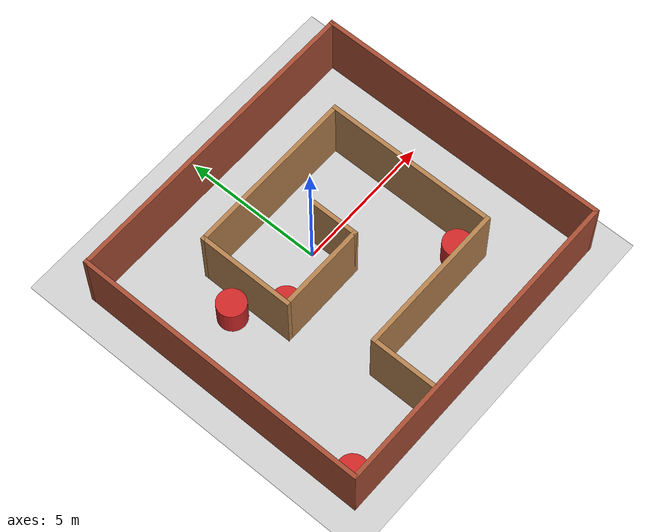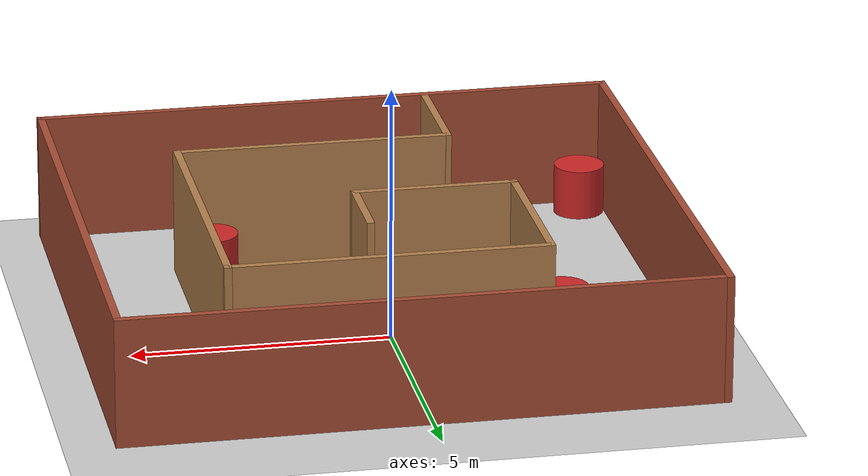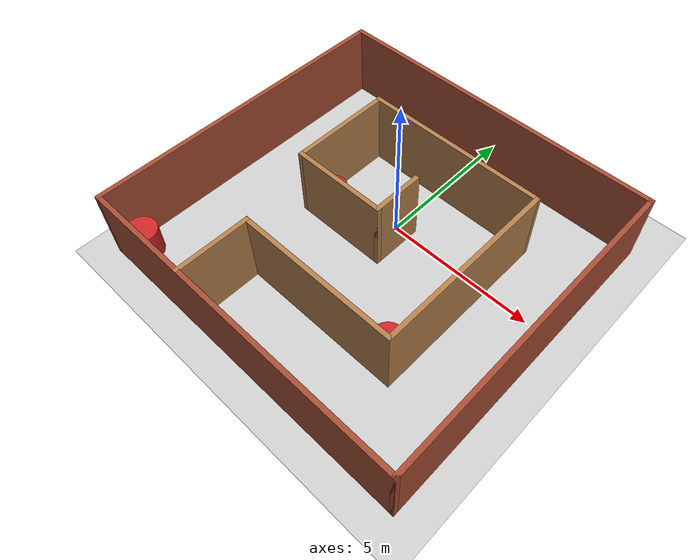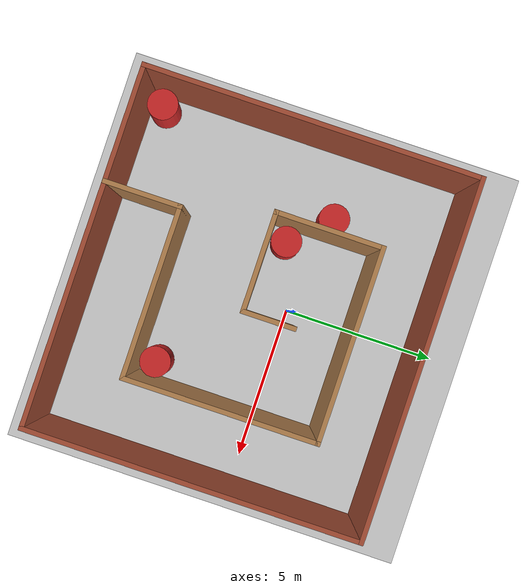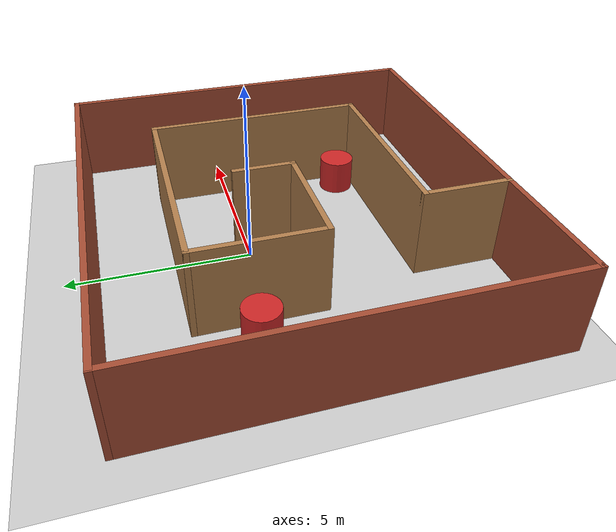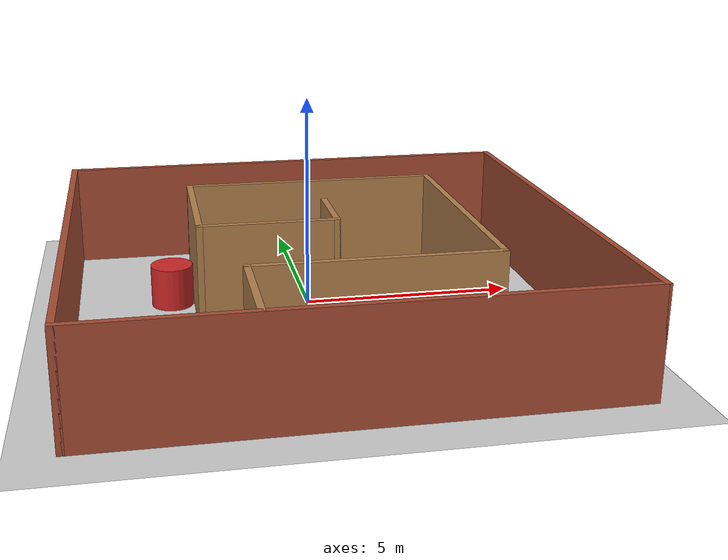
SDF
<sdf version="1.6">
 <world name="default">
  <light name="sun" type="directional">
   <pose>0 0 10 0 -0 0</pose>
   <diffuse>0.8 0.8 0.8 1</diffuse>
   <specular>0.1 0.1 0.1 1</specular>
   <attenuation>
    <range>1000</range>
    <constant>0.9</constant>
    <linear>0.01</linear>
    <quadratic>0.001</quadratic>
   </attenuation>
   <direction>-0.5 0.5 -1</direction>
  </light>
  <model name="ground_plane">
   <static>1</static>
   <link name="link">
    <collision name="collision">
     <geometry><plane><normal>0 0 1</normal><size>100 100</size></plane></geometry>
     <surface><friction><ode><mu>100</mu><mu2>50</mu2></ode></friction></surface>
    </collision>
    <visual name="visual">
     <cast_shadows>0</cast_shadows>
     <geometry><plane><normal>0 0 1</normal><size>100 100</size></plane></geometry>
     <material>
      <script><uri>file://media/materials/scripts/gazebo.material</uri><name>Gazebo/Grey</name></script>
     </material>
    </visual>
   </link>
  </model>
  <physics name="default_physics" default="0" type="ode">
   <real_time_update_rate>1000</real_time_update_rate>
   <max_step_size>0.001</max_step_size>
   <real_time_factor>1</real_time_factor>
   <ode>
    <solver>
     <type>quick</type>
     <iters>150</iters>
     <precon_iters>0</precon_iters>
     <sor>1.4</sor>
     <use_dynamic_moi_rescaling>1</use_dynamic_moi_rescaling>
    </solver>
    <constraints>
     <cfm>1e-05</cfm>
     <erp>0.2</erp>
     <contact_max_correcting_vel>2000</contact_max_correcting_vel>
     <contact_surface_layer>0.01</contact_surface_layer>
    </constraints>
   </ode>
  </physics>
  <gravity>0 0 -9.8</gravity>
  <magnetic_field>6e-06 2.3e-05 -4.2e-05</magnetic_field>
  <atmosphere type="adiabatic"/>
  <scene><ambient>0.4 0.4 0.4 1</ambient><background>0.7 0.7 0.7 1</background><shadows>1</shadows></scene>
  <spherical_coordinates>
   <surface_model>EARTH_WGS84</surface_model>
   <latitude_deg>0</latitude_deg>
   <longitude_deg>0</longitude_deg>
   <elevation>0</elevation>
   <heading_deg>0</heading_deg>
  </spherical_coordinates>
  <model name="Model4">
   <pose>0.134244 -1.1514 0 0 -0 0</pose>
   <link name="Wall_17">
    <collision name="Wall_17_Collision">
     <geometry><box><size>11.5 0.15 2.5</size></box></geometry>
     <pose>0 0 1.25 0 -0 0</pose>
    </collision>
    <visual name="Wall_17_Visual">
     <pose>0 0 1.25 0 -0 0</pose>
     <geometry><box><size>11.5 0.15 2.5</size></box></geometry>
     <material>
      <script><uri>file://media/materials/scripts/gazebo.material</uri><name>Gazebo/Bricks</name></script>
      <ambient>1 1 1 1</ambient>
     </material>
    </visual>
    <pose>0 5.3 0 0 -0 0</pose>
   </link>
   <link name="Wall_18">
    <collision name="Wall_18_Collision">
     <geometry><box><size>10.75 0.15 2.5</size></box></geometry>
     <pose>0 0 1.25 0 -0 0</pose>
    </collision>
    <visual name="Wall_18_Visual">
     <pose>0 0 1.25 0 -0 0</pose>
     <geometry><box><size>10.75 0.15 2.5</size></box></geometry>
     <material>
      <script><uri>file://media/materials/scripts/gazebo.material</uri><name>Gazebo/Bricks</name></script>
      <ambient>1 1 1 1</ambient>
     </material>
    </visual>
    <pose>5.675 0 0 0 0 -1.5708</pose>
   </link>
   <link name="Wall_21">
    <collision name="Wall_21_Collision">
     <geometry><box><size>10.75 0.15 2.5</size></box></geometry>
     <pose>0 0 1.25 0 -0 0</pose>
    </collision>
    <visual name="Wall_21_Visual">
     <pose>0 0 1.25 0 -0 0</pose>
     <geometry><box><size>10.75 0.15 2.5</size></box></geometry>
     <material>
      <script><uri>file://media/materials/scripts/gazebo.material</uri><name>Gazebo/Bricks</name></script>
      <ambient>1 1 1 1</ambient>
     </material>
    </visual>
    <pose>-5.675 0 0 0 0 -1.5708</pose>
   </link>
   <link name="Wall_22">
    <collision name="Wall_22_Collision">
     <geometry><box><size>11.5 0.15 2.5</size></box></geometry>
     <pose>0 0 1.25 0 -0 0</pose>
    </collision>
    <visual name="Wall_22_Visual">
     <pose>0 0 1.25 0 -0 0</pose>
     <geometry><box><size>11.5 0.15 2.5</size></box></geometry>
     <material>
      <script><uri>file://media/materials/scripts/gazebo.material</uri><name>Gazebo/Bricks</name></script>
      <ambient>1 1 1 1</ambient>
     </material>
    </visual>
    <pose>0 -5.3 0 0 -0 0</pose>
   </link>
   <link name="Wall_23">
    <collision name="Wall_23_Collision">
     <geometry><box><size>0.15 0.15 2.5</size></box></geometry>
     <pose>0 0 1.25 0 -0 0</pose>
    </collision>
    <visual name="Wall_23_Visual">
     <pose>0 0 1.25 0 -0 0</pose>
     <geometry><box><size>0.15 0.15 2.5</size></box></geometry>
     <material>
      <script><uri>file://media/materials/scripts/gazebo.material</uri><name>Gazebo/Bricks</name></script>
      <ambient>1 1 1 1</ambient>
     </material>
    </visual>
    <pose>5.675 -5.3 0 0 -0 0</pose>
   </link>
   <link name="Wall_28">
    <collision name="Wall_28_Collision">
     <geometry><box><size>2.5 0.15 2.5</size></box></geometry>
     <pose>0 0 1.25 0 -0 0</pose>
    </collision>
    <visual name="Wall_28_Visual">
     <pose>0 0 1.25 0 -0 0</pose>
     <geometry><box><size>2.5 0.15 2.5</size></box></geometry>
     <material>
      <script><uri>file://media/materials/scripts/gazebo.material</uri><name>Gazebo/Wood</name></script>
      <ambient>1 1 1 1</ambient>
     </material>
    </visual>
    <pose>-2.03403 -4.11823 0 0 -0 1.5708</pose>
   </link>
   <link name="Wall_29">
    <collision name="Wall_29_Collision">
     <geometry><box><size>5.5 0.15 2.5</size></box></geometry>
     <pose>0 0 1.25 0 -0 0</pose>
    </collision>
    <visual name="Wall_29_Visual">
     <pose>0 0 1.25 0 -0 0</pose>
     <geometry><box><size>5.5 0.15 2.5</size></box></geometry>
     <material>
      <script><uri>file://media/materials/scripts/gazebo.material</uri><name>Gazebo/Wood</name></script>
      <ambient>1 1 1 1</ambient>
     </material>
    </visual>
    <pose>0.640975 -2.94323 0 0 -0 0</pose>
   </link>
   <link name="Wall_30">
    <collision name="Wall_30_Collision">
     <geometry><box><size>6.25 0.15 2.5</size></box></geometry>
     <pose>0 0 1.25 0 -0 0</pose>
    </collision>
    <visual name="Wall_30_Visual">
     <pose>0 0 1.25 0 -0 0</pose>
     <geometry><box><size>6.25 0.15 2.5</size></box></geometry>
     <material>
      <script><uri>file://media/materials/scripts/gazebo.material</uri><name>Gazebo/Wood</name></script>
      <ambient>1 1 1 1</ambient>
     </material>
    </visual>
    <pose>3.31597 0.106773 0 0 -0 1.5708</pose>
   </link>
   <link name="Wall_31">
    <collision name="Wall_31_Collision">
     <geometry><box><size>6.25 0.15 2.5</size></box></geometry>
     <pose>0 0 1.25 0 -0 0</pose>
    </collision>
    <visual name="Wall_31_Visual">
     <pose>0 0 1.25 0 -0 0</pose>
     <geometry><box><size>6.25 0.15 2.5</size></box></geometry>
     <material>
      <script><uri>file://media/materials/scripts/gazebo.material</uri><name>Gazebo/Wood</name></script>
      <ambient>1 1 1 1</ambient>
     </material>
    </visual>
    <pose>0.265975 3.15677 0 0 -0 3.14159</pose>
   </link>
   <link name="Wall_32">
    <collision name="Wall_32_Collision">
     <geometry><box><size>3.5 0.15 2.5</size></box></geometry>
     <pose>0 0 1.25 0 -0 0</pose>
    </collision>
    <visual name="Wall_32_Visual">
     <pose>0 0 1.25 0 -0 0</pose>
     <geometry><box><size>3.5 0.15 2.5</size></box></geometry>
     <material>
      <script><uri>file://media/materials/scripts/gazebo.material</uri><name>Gazebo/Wood</name></script>
      <ambient>1 1 1 1</ambient>
     </material>
    </visual>
    <pose>-2.78403 1.48177 0 0 0 -1.5708</pose>
   </link>
   <link name="Wall_33">
    <collision name="Wall_33_Collision">
     <geometry><box><size>3.25 0.15 2.5</size></box></geometry>
     <pose>0 0 1.25 0 -0 0</pose>
    </collision>
    <visual name="Wall_33_Visual">
     <pose>0 0 1.25 0 -0 0</pose>
     <geometry><box><size>3.25 0.15 2.5</size></box></geometry>
     <material>
      <script><uri>file://media/materials/scripts/gazebo.material</uri><name>Gazebo/Wood</name></script>
      <ambient>1 1 1 1</ambient>
     </material>
    </visual>
    <pose>-1.23402 -0.193227 0 0 -0 0</pose>
   </link>
   <link name="Wall_34">
    <collision name="Wall_34_Collision">
     <geometry><box><size>1.75 0.15 2.5</size></box></geometry>
     <pose>0 0 1.25 0 -0 0</pose>
    </collision>
    <visual name="Wall_34_Visual">
     <pose>0 0 1.25 0 -0 0</pose>
     <geometry><box><size>1.75 0.15 2.5</size></box></geometry>
     <material>
      <script><uri>file://media/materials/scripts/gazebo.material</uri><name>Gazebo/Wood</name></script>
      <ambient>1 1 1 1</ambient>
     </material>
    </visual>
    <pose>0.315975 0.606773 0 0 -0 1.5708</pose>
   </link>
   <static>1</static>
  </model>
  <model name="unit_cylinder_0">
   <pose>-4.96577 -5.8764 0.499991 0 0 -7.2e-05</pose>
   <link name="link">
    <inertial>
     <mass>1</mass>
     <inertia><ixx>0.145833</ixx><ixy>0</ixy><ixz>0</ixz><iyy>0.145833</iyy><iyz>0</iyz><izz>0.125</izz></inertia>
    </inertial>
    <collision name="collision">
     <geometry><cylinder><radius>0.5</radius><length>1</length></cylinder></geometry>
    </collision>
    <visual name="visual">
     <geometry><cylinder><radius>0.5</radius><length>1</length></cylinder></geometry>
     <material>
      <script><name>Gazebo/Red</name><uri>file://media/materials/scripts/gazebo.material</uri></script>
     </material>
    </visual>
   </link>
  </model>
  <model name="unit_cylinder_1">
   <pose>-2.07479 -0.752913 0.499997 -4e-06 -4e-06 -0</pose>
   <link name="link">
    <inertial>
     <mass>1</mass>
     <inertia><ixx>0.145833</ixx><ixy>0</ixy><ixz>0</ixz><iyy>0.145833</iyy><iyz>0</iyz><izz>0.125</izz></inertia>
    </inertial>
    <collision name="collision">
     <geometry><cylinder><radius>0.5</radius><length>1</length></cylinder></geometry>
    </collision>
    <visual name="visual">
     <geometry><cylinder><radius>0.5</radius><length>1</length></cylinder></geometry>
     <material>
      <script><name>Gazebo/Red</name><uri>file://media/materials/scripts/gazebo.material</uri></script>
     </material>
    </visual>
   </link>
  </model>
  <model name="unit_cylinder_2">
   <pose>2.86845 -3.49459 0.499993 4e-06 4e-06 -0</pose>
   <link name="link">
    <inertial>
     <mass>1</mass>
     <inertia><ixx>0.145833</ixx><ixy>0</ixy><ixz>0</ixz><iyy>0.145833</iyy><iyz>0</iyz><izz>0.125</izz></inertia>
    </inertial>
    <collision name="collision">
     <geometry><cylinder><radius>0.5</radius><length>1</length></cylinder></geometry>
    </collision>
    <visual name="visual">
     <geometry><cylinder><radius>0.5</radius><length>1</length></cylinder></geometry>
     <material>
      <script><name>Gazebo/Red</name><uri>file://media/materials/scripts/gazebo.material</uri></script>
     </material>
    </visual>
   </link>
  </model>
  <model name="unit_cylinder_3">
   <pose>-3.23272 0.46537 0.499997 -4e-06 -4e-06 -0</pose>
   <link name="link">
    <inertial>
     <mass>1</mass>
     <inertia><ixx>0.145833</ixx><ixy>0</ixy><ixz>0</ixz><iyy>0.145833</iyy><iyz>0</iyz><izz>0.125</izz></inertia>
    </inertial>
    <collision name="collision">
     <geometry><cylinder><radius>0.5</radius><length>1</length></cylinder></geometry>
    </collision>
    <visual name="visual">
     <geometry><cylinder><radius>0.5</radius><length>1</length></cylinder></geometry>
     <material>
      <script><name>Gazebo/Red</name><uri>file://media/materials/scripts/gazebo.material</uri></script>
     </material>
    </visual>
   </link>
  </model>
 </world>
</sdf>
